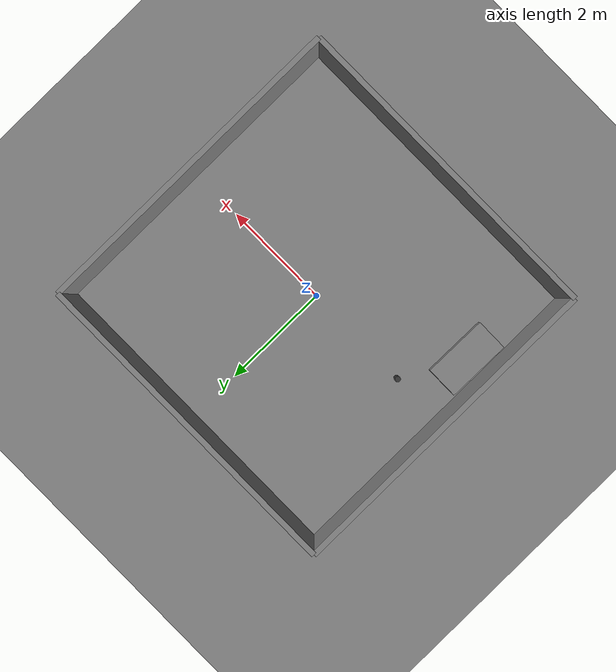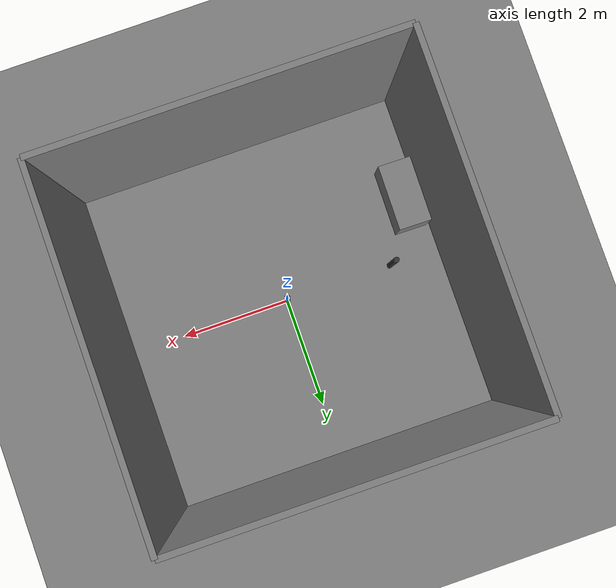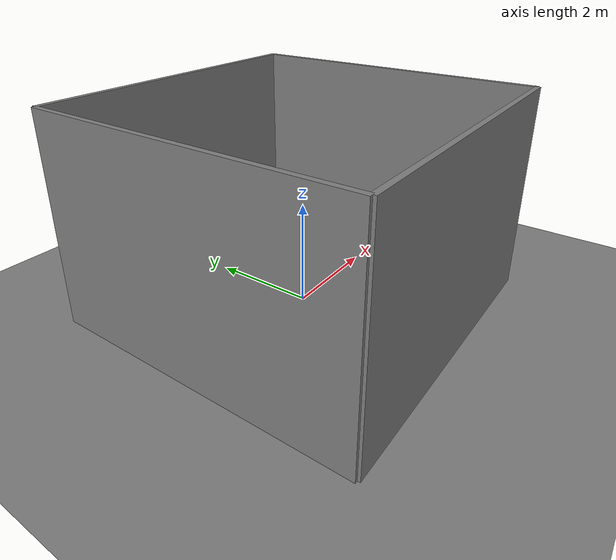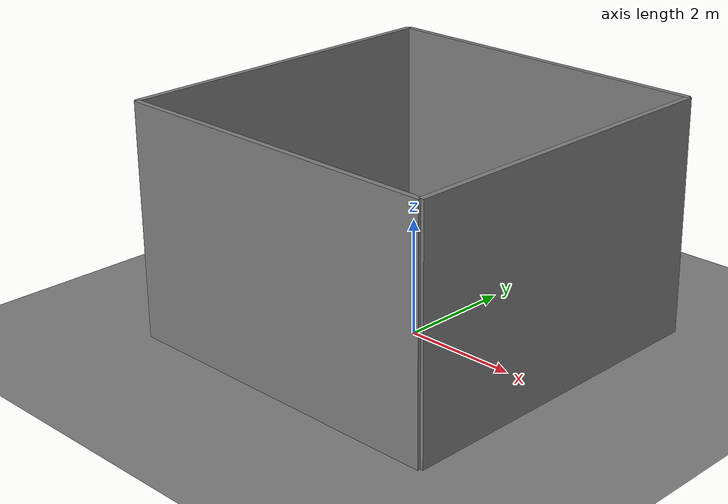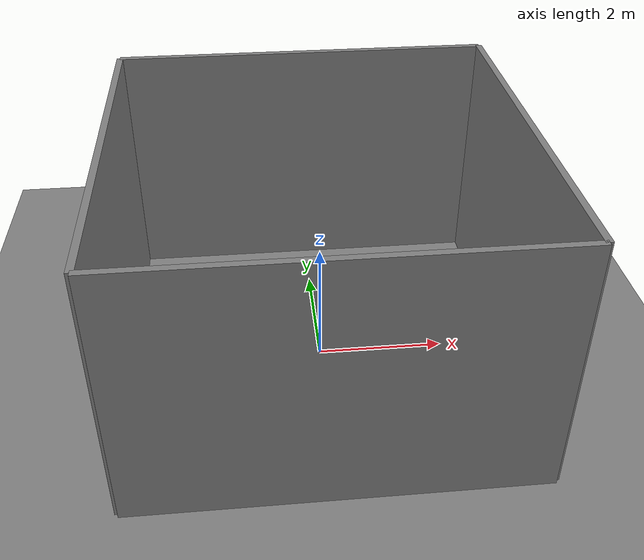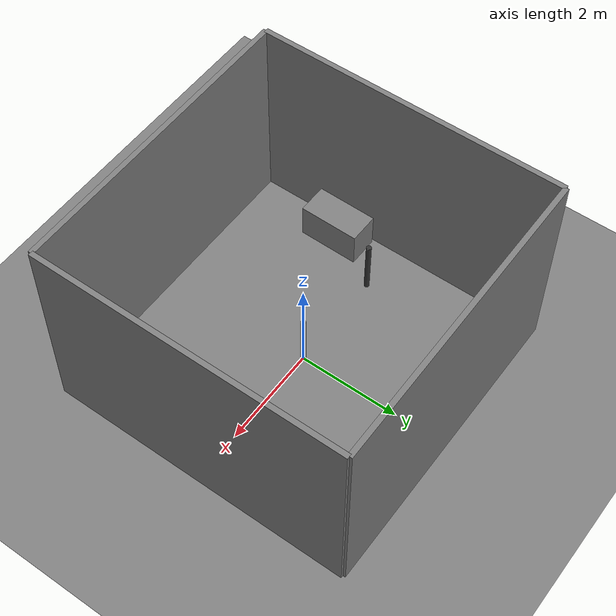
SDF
<?xml version="1.0" ?>
<sdf version="1.7">

    <world name="lab">

        <light name="spot1_light" type="spot">
            <pose frame="">0.0 0.0 1.2 0.0 1.56 0.78</pose>
            <diffuse>1 1 1 1.0</diffuse>
            <specular>1 1 1 1.0</specular>
            <attenuation>
                <range>30</range>
                <linear>1</linear>
                <quadratic>0.001</quadratic>
            </attenuation>
            <spot>
                <inner_angle>0.5</inner_angle>
                <outer_angle>1.0</outer_angle>
                <falloff>0.5</falloff>
            </spot>
            <direction>0 0 -1</direction>
        </light>

        <light name="spot2_light" type="spot">
            <pose frame="">-2.0 0.0 1.2 0.0 1.56 2.53</pose>
            <diffuse>1 1 1 1.0</diffuse>
            <specular>1 1 1 1.0</specular>
            <attenuation>
                <range>30</range>
                <linear>1</linear>
                <quadratic>0.001</quadratic>
            </attenuation>
            <spot>
                <inner_angle>0.5</inner_angle>
                <outer_angle>0.5</outer_angle>
                <falloff>0.5</falloff>
            </spot>
            <direction>0 0 -1</direction>
        </light>

        <model name="ground_plane">
            <static>true</static>
            <link name="link">
                <collision name="collision">
                    <geometry>
                        <plane>
                            <normal>0 0 1</normal>
                        </plane>
                    </geometry>
                </collision>
                <visual name="visual">
                    <geometry>
                        <plane>
                            <normal>0 0 1</normal>
                            <size>100 100</size>
                        </plane>
                    </geometry>
                    <material>
                        <ambient>0.1 0.1 0.1 1</ambient>
                        <diffuse>0.5 0.5 0.5 1</diffuse>
                        <specular>1 1 1 1</specular>
                    </material>
                </visual>
            </link>
        </model>

        <model name="wall_1">
            <static>true</static>
            <pose>0 3.0 2 0 0 0</pose>
            <link name="link">
                <collision name="collision">
                    <geometry>
                        <box>
                            <size>6 0.1 4</size>
                        </box>
                    </geometry>
                </collision>
                <visual name="visual">
                    <geometry>
                        <box>
                            <size>6 0.1 4</size>
                        </box>
                    </geometry>
                    <material>
                        <ambient>0.1 0.1 0.1 1</ambient>
                        <diffuse>0.5 0.5 0.5 1</diffuse>
                        <specular>1 1 1 1</specular>
                    </material>
                </visual>
            </link>
        </model>

        <model name="wall_2">
            <static>true</static>
            <pose>3.0 0 2 0 0 1.5708</pose>
            <link name="link">
                <collision name="collision">
                    <geometry>
                        <box>
                            <size>6 0.1 4</size>
                        </box>
                    </geometry>
                </collision>
                <visual name="visual">
                    <geometry>
                        <box>
                            <size>6 0.1 4</size>
                        </box>
                    </geometry>
                    <material>
                        <ambient>0.1 0.1 0.1 1</ambient>
                        <diffuse>0.5 0.5 0.5 1</diffuse>
                        <specular>1 1 1 1</specular>
                    </material>
                </visual>
            </link>
        </model>

        <model name="wall_3">
            <static>true</static>
            <pose>0 -3.0 2 0 0 0</pose>
            <link name="link">
                <collision name="collision">
                    <geometry>
                        <box>
                            <size>6 0.1 4</size>
                        </box>
                    </geometry>
                </collision>
                <visual name="visual">
                    <geometry>
                        <box>
                            <size>6 0.1 4</size>
                        </box>
                    </geometry>
                    <material>
                        <ambient>0.1 0.1 0.1 1</ambient>
                        <diffuse>0.5 0.5 0.5 1</diffuse>
                        <specular>1 1 1 1</specular>
                    </material>
                </visual>
            </link>
        </model>

        <model name="wall_4">
            <static>true</static>
            <pose>-3.0 0 2 0 0 1.5708</pose>
            <link name="link">
                <collision name="collision">
                    <geometry>
                        <box>
                            <size>6 0.1 4</size>
                        </box>
                    </geometry>
                </collision>
                <visual name="visual">
                    <geometry>
                        <box>
                            <size>6 0.1 4</size>
                        </box>
                    </geometry>
                    <material>
                        <ambient>0.1 0.1 0.1 1</ambient>
                        <diffuse>0.5 0.5 0.5 1</diffuse>
                        <specular>1 1 1 1</specular>
                    </material>
                </visual>
            </link>
        </model>

        <model name="table">
            <static>true</static>
            <pose>-2.6 -1.1 0.35 0.0 0.0 1.56</pose>
            <link name="link">
                <collision name="collision">
                    <geometry>
                        <box>
                            <size>1.2 0.6 0.73</size>
                        </box>
                    </geometry>
                </collision>
                <visual name="visual">
                    <geometry>
                        <box>
                            <size>1.2 0.6 0.73</size>
                        </box>
                    </geometry>
                    <material>
                        <ambient>0.1 0.1 0.1 1</ambient>
                        <diffuse>0.5 0.5 0.5 1</diffuse>
                        <specular>1 1 1 1</specular>
                    </material>
                </visual>
            </link>
        </model>

        <model name="spot_1">
            <static>true</static>
            <pose>0.0 0.0 0.575 0 0 0</pose>
            <link name="spot_1_link">
                <collision name="spot_1_collision">
                    <geometry>
                        <cylinder>
                            <radius>0.05</radius>
                            <length>1.15</length>
                        </cylinder>
                    </geometry>
                </collision>
                <visual name="foco_visual">
                    <geometry>
                        <cylinder>
                            <radius>0.05</radius>
                            <length>1.15</length>
                        </cylinder>
                    </geometry>
                    <material>
                        <ambient>0 0 0 1</ambient>
                        <diffuse>0.2 0.2 0.2 1</diffuse>
                        <specular>0.5 0.5 0.5 1</specular>
                    </material>
                </visual>
            </link>
        </model>

        <model name="spot_2">
            <static>true</static>
            <pose>-2.0 0.0 0.575 0 0 0</pose>
            <link name="spot_2_link">
                <collision name="spot_2_collision">
                    <geometry>
                        <cylinder>
                            <radius>0.05</radius>
                            <length>1.15</length>
                        </cylinder>
                    </geometry>
                </collision>
                <visual name="foco_visual">
                    <geometry>
                        <cylinder>
                            <radius>0.05</radius>
                            <length>1.15</length>
                        </cylinder>
                    </geometry>
                    <material>
                        <ambient>0 0 0 1</ambient>
                        <diffuse>0.2 0.2 0.2 1</diffuse>
                        <specular>0.5 0.5 0.5 1</specular>
                    </material>
                </visual>
            </link>
        </model>
    </world>
</sdf>
